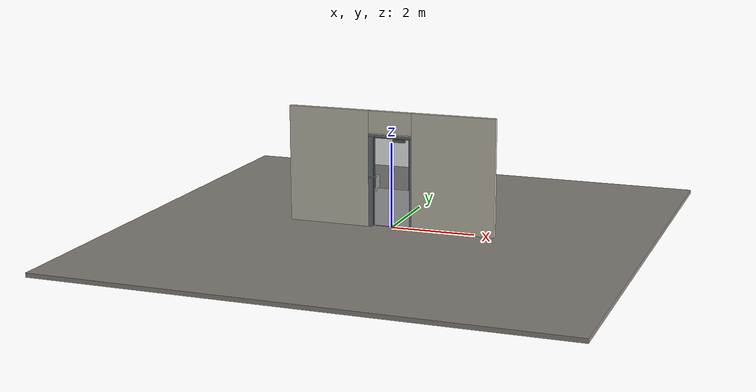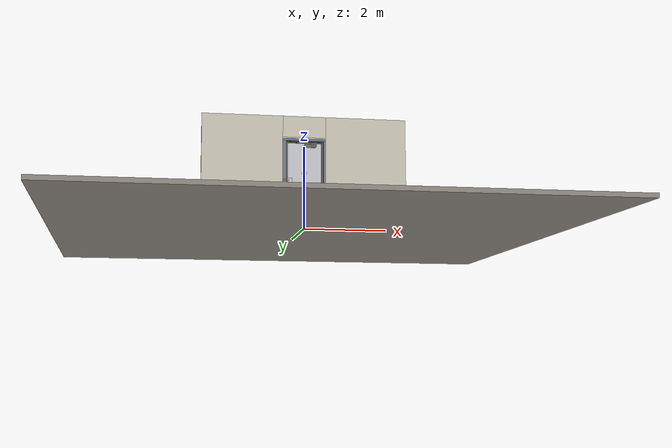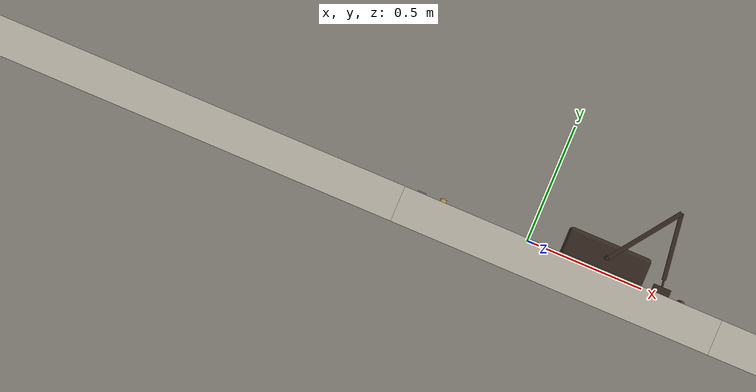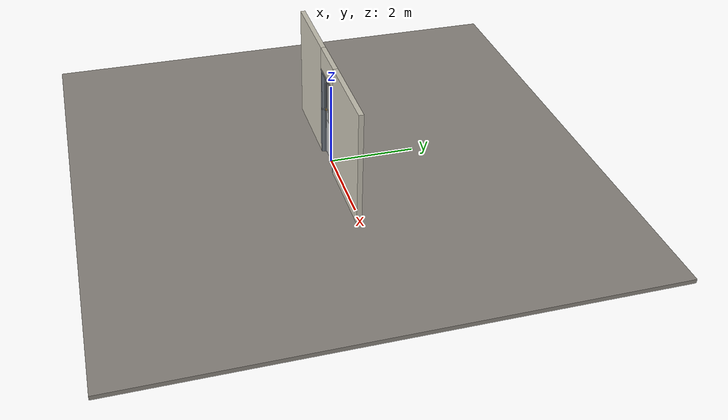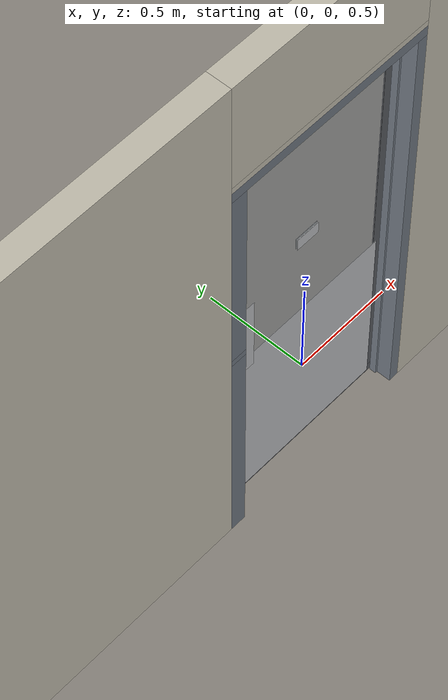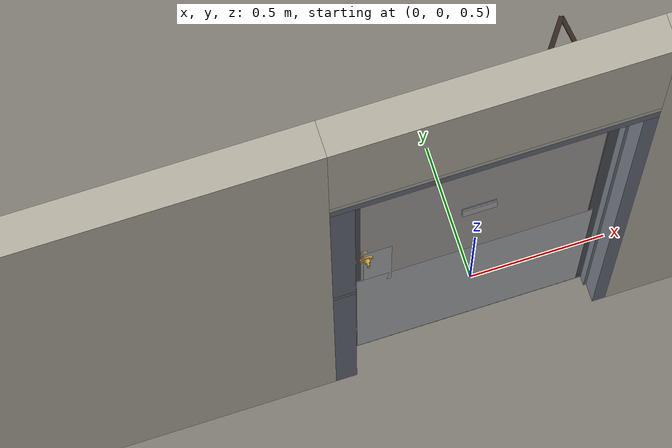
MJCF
<?xml version="1.0" ?>
<mujoco model="db0912_swing_single_full">
  <compiler angle="radian" meshdir="../../hardware" texturedir="../../textures" autolimits="true" inertiafromgeom="false"/>
  <option timestep="0.002" integrator="implicitfast" cone="elliptic" impratio="10" noslip_iterations="3">
    <flag multiccd="enable"/>
  </option>
  <size memory="16M"/>
  <default>
    <geom condim="4" solref="0.005 1" solimp="0.95 0.99 0.001"/>
    <joint solreflimit="0.005 1" solimplimit="0.95 0.99 0.001"/>
    <tendon solreflimit="0.005 1"/>
    <equality solref="0.002 1"/>
  </default>
  <visual>
    <headlight ambient="0.4 0.4 0.4" diffuse="0.7 0.7 0.7" specular="0.2 0.2 0.2"/>
    <quality shadowsize="4096"/>
    <map znear="0.01" zfar="60"/>
  </visual>
  <asset>
    <mesh name="closer_body_fdc4667657" file="closer_body_fdc4667657.obj"/>
    <mesh name="cyl_face_e9e5036966" file="cyl_face_e9e5036966.obj"/>
    <mesh name="hinge_6a70328eaf" file="hinge_6a70328eaf.obj"/>
    <mesh name="hinge_jamb_2905960ffb" file="hinge_jamb_2905960ffb.obj"/>
    <mesh name="thumbturn_eb5c9899a3" file="thumbturn_eb5c9899a3.obj"/>
    <material name="mat_floor" rgba="0.55 0.53 0.5 1" specular="0.2" shininess="0.15" reflectance="0"/>
    <material name="mat_wall" rgba="0.78 0.76 0.7 1" specular="0.2" shininess="0.1" reflectance="0"/>
    <material name="mat_leaf" rgba="0.35 0.36 0.38 1" specular="0.68" shininess="0.4" reflectance="0.32"/>
    <material name="mat_mesh_infill" rgba="0.6 0.62 0.64 0.55" specular="0.68" shininess="0.3" reflectance="0.1"/>
    <material name="mat_hinge" rgba="0.45 0.3 0.22 1" specular="0.5" shininess="0.1" reflectance="0.2"/>
    <material name="mat_op_stainless" rgba="0.75 0.76 0.77 1" specular="0.8" shininess="0.65" reflectance="0.4"/>
    <material name="mat_deadbolt" rgba="0.85 0.66 0.3 1" specular="0.8" shininess="0.75" reflectance="0.4"/>
    <material name="mat_frame" rgba="0.45 0.48 0.52 1" specular="0.32" shininess="0.6" reflectance="0.08"/>
    <material name="mat_seal" rgba="0.1 0.1 0.1 1" specular="0.2" shininess="0.1" reflectance="0"/>
    <material name="mat_closer" rgba="0.22 0.17 0.13 1" specular="0.8" shininess="0.6" reflectance="0.4"/>
    <material name="mat_kick" rgba="0.75 0.76 0.77 1" specular="0.8" shininess="0.65" reflectance="0.4"/>
    <material name="mat_sign" rgba="0.75 0.76 0.77 1" specular="0.8" shininess="0.65" reflectance="0.4"/>
    <texture name="skybox" type="skybox" builtin="gradient" rgb1="0.6 0.7 0.85" rgb2="0.9 0.92 0.95" width="256" height="256"/>
  </asset>
  <worldbody>
    <light name="sun" pos="1.5 -2.5 4" dir="-0.3 0.5 -0.8" directional="true" diffuse="0.8 0.8 0.8" specular="0.3 0.3 0.3" castshadow="true"/>
    <light name="fill" pos="-1.5 2.5 3" dir="0.3 -0.5 -0.7" directional="true" diffuse="0.35 0.35 0.4" castshadow="false"/>
    <camera name="robot_view" pos="0 -2.685312 1.812087" xyaxes="1 0 0 0 0.26963 0.962964" fovy="52"/>
    <camera name="far_view" pos="0 2.590313 1.812087" xyaxes="-1 0 0 0 -0.26963 0.962964" fovy="52"/>
    <camera name="iso" pos="-2.004737 -2.263262 2.234138" xyaxes="0.741536 -0.670913 0 0.242917 0.268487 0.932151" fovy="46"/>
    <camera name="detail_handle" pos="-0.174 -0.8475 1.32" xyaxes="0.97561 0.219512 0 -0.070934 0.315262 0.94635" fovy="38"/>
    <geom name="floor" type="box" size="6 6 0.05" pos="0 0 -0.05" material="mat_floor" group="0" contype="1" conaffinity="1" friction="0.8 0.005 0.0001" density="2400"/>
    <geom name="wall_left" type="box" size="0.98 0.0575 1.3735" pos="-1.52 -0.0475 1.3735" material="mat_wall" group="0" contype="1" conaffinity="1" friction="0.6 0.005 0.0001" density="800"/>
    <geom name="wall_right" type="box" size="0.995 0.0575 1.3735" pos="1.505 -0.0475 1.3735" material="mat_wall" group="0" contype="1" conaffinity="1" friction="0.6 0.005 0.0001" density="800"/>
    <geom name="wall_header" type="box" size="0.525 0.0575 0.26" pos="-0.015 -0.0475 2.487" material="mat_wall" group="0" contype="1" conaffinity="1" friction="0.6 0.005 0.0001" density="800"/>
    <geom name="hinge_0_jamb" type="mesh" mesh="hinge_jamb_2905960ffb" pos="0.457 0.01 0.259" quat="0 0 0 1" material="mat_hinge" group="1" contype="0" conaffinity="0" density="7850"/>
    <geom name="hinge_1_jamb" type="mesh" mesh="hinge_jamb_2905960ffb" pos="0.457 0.01 1.076" quat="0 0 0 1" material="mat_hinge" group="1" contype="0" conaffinity="0" density="7850"/>
    <geom name="hinge_2_jamb" type="mesh" mesh="hinge_jamb_2905960ffb" pos="0.457 0.01 1.963" quat="0 0 0 1" material="mat_hinge" group="1" contype="0" conaffinity="0" density="7850"/>
    <geom name="leaf_deadbolt_strike_b" type="box" size="0.0155 0.003 0.0005" pos="-0.4595 0 1.1615" quat="0.5 0.5 0.5 0.5" material="mat_deadbolt" group="1" contype="0" conaffinity="0" density="7800"/>
    <geom name="leaf_deadbolt_strike_l" type="box" size="0.003 0.0155 0.0005" pos="-0.4595 -0.0125 1.18" quat="0.5 0.5 0.5 0.5" material="mat_deadbolt" group="1" contype="0" conaffinity="0" density="7800"/>
    <geom name="leaf_deadbolt_strike_t" type="box" size="0.0155 0.003 0.0005" pos="-0.4595 0 1.1985" quat="0.5 0.5 0.5 0.5" material="mat_deadbolt" group="1" contype="0" conaffinity="0" density="7800"/>
    <geom name="leaf_deadbolt_strike_r" type="box" size="0.003 0.0155 0.0005" pos="-0.4595 0.0125 1.18" quat="0.5 0.5 0.5 0.5" material="mat_deadbolt" group="1" contype="0" conaffinity="0" density="7800"/>
    <geom name="jamb_hinge" type="box" size="0.025 0.0575 1.0735" pos="0.485 -0.0475 1.0735" material="mat_frame" group="0" contype="1" conaffinity="1" friction="0.6 0.005 0.0001" density="300"/>
    <geom name="strike_1180_wall_n" type="box" size="0.04 0.04775 0.0155" pos="-0.5 -0.05725 1.18" material="mat_frame" group="0" contype="1" conaffinity="1" friction="0.6 0.005 0.0001" density="300"/>
    <geom name="strike_1180_wall_p" type="box" size="0.0157 0.003 0.0155" pos="-0.4757 0.0125 1.18" material="mat_frame" group="0" contype="1" conaffinity="1" friction="0.6 0.005 0.0001" density="300"/>
    <geom name="strike_1180_back" type="box" size="0.0253 0.0095 0.0155" pos="-0.5147 0 1.18" material="mat_frame" group="0" contype="1" conaffinity="1" friction="0.6 0.005 0.0001" density="300"/>
    <geom name="jamb_strike_0" type="box" size="0.04 0.0575 0.58225" pos="-0.5 -0.0475 0.58225" material="mat_frame" group="0" contype="1" conaffinity="1" friction="0.6 0.005 0.0001" density="300"/>
    <geom name="jamb_strike_1" type="box" size="0.04 0.0575 0.47575" pos="-0.5 -0.0475 1.67125" material="mat_frame" group="0" contype="1" conaffinity="1" friction="0.6 0.005 0.0001" density="300"/>
    <geom name="jamb_head" type="box" size="0.525 0.0575 0.025" pos="-0.015 -0.0475 2.172" material="mat_frame" group="0" contype="1" conaffinity="1" friction="0.6 0.005 0.0001" density="300"/>
    <geom name="head_stud" type="box" size="0.525 0.0575 0.015" pos="-0.015 -0.0475 2.212" material="mat_wall" group="0" contype="1" conaffinity="1" friction="0.6 0.005 0.0001" density="500"/>
    <geom name="stop_hinge" type="box" size="0.0055 0.016 1.0735" pos="0.4545 -0.0195 1.0735" material="mat_frame" group="0" contype="1" conaffinity="1" friction="0.6 0.005 0.0001" density="300"/>
    <geom name="stop_strike" type="box" size="0.0055 0.016 0.57625" pos="-0.4545 -0.0195 0.57625" material="mat_frame" group="0" contype="1" conaffinity="1" friction="0.6 0.005 0.0001" density="300"/>
    <geom name="stop_strike_1" type="box" size="0.0055 0.016 0.46975" pos="-0.4545 -0.0195 1.67725" material="mat_frame" group="0" contype="1" conaffinity="1" friction="0.6 0.005 0.0001" density="300"/>
    <geom name="stop_head" type="box" size="0.46 0.016 0.0055" pos="0 -0.0195 2.1415" material="mat_frame" group="0" contype="1" conaffinity="1" friction="0.6 0.005 0.0001" density="300"/>
    <geom name="seal_hinge" type="box" size="0.004 0.003 1.0735" pos="0.457 -0.006 1.0735" material="mat_seal" group="1" contype="0" conaffinity="0" density="1100"/>
    <geom name="seal_strike" type="box" size="0.004 0.003 0.57625" pos="-0.457 -0.006 0.57625" material="mat_seal" group="1" contype="0" conaffinity="0" density="1100"/>
    <geom name="seal_strike_1" type="box" size="0.004 0.003 0.46975" pos="-0.457 -0.006 1.67725" material="mat_seal" group="1" contype="0" conaffinity="0" density="1100"/>
    <geom name="seal_head" type="box" size="0.44 0.003 0.008" pos="0 -0.006 2.135" material="mat_seal" group="1" contype="0" conaffinity="0" density="1100"/>
    <geom name="closer_bracket" type="box" size="0.03 0.012 0.014" pos="0.36 0.022 2.177" material="mat_closer" group="1" contype="0" conaffinity="0" density="2700"/>
    <site name="approach_point" pos="0 -1.5 0" quat="1 0 0 0" size="0.05" rgba="0.2 0.9 0.2 0.5" group="4"/>
    <site name="goal_point" pos="0 1.5 0" quat="1 0 0 0" size="0.05" rgba="0.2 0.9 0.2 0.5" group="4"/>
    <site name="door_plane_center" pos="0 0 1.0735" quat="1 0 0 0" size="0.02" rgba="0.2 0.9 0.2 0.5" group="4"/>
    <body name="leaf" pos="0.46 0 0">
      <inertial pos="-0.430568 0.009404 1.184017" mass="62.750816" quat="0.514038 -0.516417 -0.492153 -0.476302" diaginertia="3.80664727 30.182416688 33.937088856"/>
      <joint name="leaf_hinge" type="hinge" axis="0 0 -1" pos="-0.003 0.01 0" limited="true" range="0 1.745329" solreflimit="0.02 1" damping="12.268966" frictionloss="4.303505" stiffness="15.508058" springref="-1.827437" armature="0.02"/>
      <geom name="leaf_slab_col" type="box" size="0.457 0.003 1.067" pos="-0.46 0 1.076" material="mat_leaf" group="3" contype="1" conaffinity="1" rgba="0.8 0.3 0.3 0.25" friction="0.45 0.005 0.0001" density="1"/>
      <geom name="leaf_rail_b" type="box" size="0.457 0.003 0.0225" pos="-0.46 0 0.0315" material="mat_leaf" group="1" contype="0" conaffinity="0" density="1"/>
      <geom name="leaf_rail_t" type="box" size="0.457 0.003 0.0225" pos="-0.46 0 2.1205" material="mat_leaf" group="1" contype="0" conaffinity="0" density="1"/>
      <geom name="leaf_stile_h" type="box" size="0.0225 0.003 1.067" pos="-0.0255 0 1.076" material="mat_leaf" group="1" contype="0" conaffinity="0" density="1"/>
      <geom name="leaf_stile_l" type="box" size="0.0225 0.003 1.067" pos="-0.8945 0 1.076" material="mat_leaf" group="1" contype="0" conaffinity="0" density="1"/>
      <geom name="leaf_mesh" type="box" size="0.412 0.0015 1.022" pos="-0.46 0 1.076" material="mat_mesh_infill" group="1" contype="0" conaffinity="0" density="1"/>
      <geom name="hinge_0" type="mesh" mesh="hinge_6a70328eaf" pos="-0.003 0.01 0.259" quat="0 0 0 1" material="mat_hinge" group="1" contype="0" conaffinity="0" density="7850"/>
      <geom name="hinge_1" type="mesh" mesh="hinge_6a70328eaf" pos="-0.003 0.01 1.076" quat="0 0 0 1" material="mat_hinge" group="1" contype="0" conaffinity="0" density="7850"/>
      <geom name="hinge_2" type="mesh" mesh="hinge_6a70328eaf" pos="-0.003 0.01 1.963" quat="0 0 0 1" material="mat_hinge" group="1" contype="0" conaffinity="0" density="7850"/>
      <geom name="leaf_push_plate_n" type="box" size="0.05 0.0008 0.2" pos="-0.812 -0.0038 1.04" material="mat_op_stainless" group="1" contype="0" conaffinity="0" density="7900"/>
      <geom name="leaf_deadbolt_faceplate" type="box" size="0.0006 0.001 0.0245" pos="-0.9164 0 1.18" material="mat_deadbolt" group="1" contype="0" conaffinity="0" density="8500"/>
      <geom name="leaf_deadbolt_cylinder_face" type="mesh" mesh="cyl_face_e9e5036966" pos="-0.852 0.003 1.18" quat="0 0 0.707107 0.707107" material="mat_deadbolt" group="1" contype="0" conaffinity="0" density="7100"/>
      <geom name="closer_body" type="mesh" mesh="closer_body_fdc4667657" pos="-0.3 0.003 2.054" quat="0 0 0.707107 0.707107" material="mat_closer" group="1" contype="0" conaffinity="0" density="2000"/>
      <geom name="closer_body_col" type="box" size="0.145 0.05 0.035" pos="-0.3 0.053 2.054" material="mat_closer" group="3" contype="1" conaffinity="1" rgba="0.8 0.3 0.3 0.25" friction="0.6 0.005 0.0001" density="2000"/>
      <geom name="closer_pinion_shaft" type="cylinder" size="0.008 0.0615" pos="-0.3 0.053 2.1155" material="mat_closer" group="1" contype="0" conaffinity="0" density="2700"/>
      <geom name="armor_plate" type="box" size="0.427 0.0008 0.45" pos="-0.46 -0.0038 0.469" material="mat_kick" group="2" contype="0" conaffinity="0" density="7900"/>
      <geom name="sign_push" type="box" size="0.06 0.001 0.03" pos="-0.46 -0.004 1.359" material="mat_sign" group="2" contype="0" conaffinity="0" density="7900"/>
      <geom name="sign_pull" type="box" size="0.06 0.001 0.03" pos="-0.46 0.004 1.359" material="mat_sign" group="2" contype="0" conaffinity="0" density="7900"/>
      <site name="leaf_push_plate_push_n" pos="-0.812 -0.003 1.04" quat="1 0 0 0" size="0.012" rgba="0.2 0.9 0.2 0.5" group="4"/>
      <site name="leaf_edge_mid" pos="-0.917 0 1.067" quat="1 0 0 0" size="0.02" rgba="0.2 0.9 0.2 0.5" group="4"/>
      <body name="leaf_deadbolt" pos="-0.917 0 1.18">
        <inertial pos="0.0023 0 0" mass="0.18836" quat="0 0 0.707107 0.707107" diaginertia="0.000013829 0.000052194 0.000057986"/>
        <joint name="leaf_deadbolt_slide" type="slide" axis="1 0 0" limited="true" range="0 0.0254" damping="5" frictionloss="1.5" armature="0.1"/>
        <geom name="leaf_deadbolt_box" type="box" size="0.0277 0.008 0.0125" pos="0.0023 0 0" material="mat_deadbolt" group="0" contype="1" conaffinity="1" friction="0.3 0.005 0.0001" density="8500"/>
      </body>
      <body name="leaf_deadbolt_thumbturn" pos="-0.852 -0.003 1.18">
        <inertial pos="0 -0.012928 0" mass="0.178946" quat="0.5 0.5 0.5 0.5" diaginertia="0.000026045 0.000026215 0.000032438"/>
        <joint name="leaf_deadbolt_thumbturn_hinge" type="hinge" axis="0 1 0" limited="true" range="0 1.5708" damping="0.05" frictionloss="0.35" armature="0.005"/>
        <geom name="leaf_deadbolt_thumbturn_mesh" type="mesh" mesh="thumbturn_eb5c9899a3" pos="0 0 0" quat="0 0 -0.707107 0.707107" material="mat_deadbolt" group="0" contype="1" conaffinity="1" friction="0.6 0.005 0.0001" density="7100"/>
        <geom name="leaf_deadbolt_thumbturn_col" type="box" size="0.006 0.012 0.016" pos="0 -0.02 0" material="mat_deadbolt" group="3" contype="1" conaffinity="1" rgba="0.8 0.3 0.3 0.25" friction="0.6 0.005 0.0001" density="7100"/>
      </body>
      <body name="closer_arm_main" pos="-0.3 0.053 2.177" quat="0.890947 0 0 0.454107">
        <inertial pos="0.14 0 0" mass="0.12096" quat="1 0 0 0" diaginertia="0.000003588 0.00079128 0.000792852"/>
        <joint name="closer_pinion" type="hinge" axis="0 0 1" limited="false" damping="0.01" armature="0.002"/>
        <geom name="closer_arm_main_geom" type="box" size="0.14 0.008 0.005" pos="0.14 0 0" material="mat_closer" group="1" contype="0" conaffinity="0" density="2700"/>
        <body name="closer_arm_fore" pos="0.28 0 0" quat="0.373215 0 0 -0.927745">
          <inertial pos="0.128088 0 0" mass="0.076531" quat="1 0 0 0" diaginertia="0.000001771 0.000437665 0.000438201"/>
          <joint name="closer_elbow" type="hinge" axis="0 0 1" limited="false" damping="0.01" armature="0.002"/>
          <geom name="closer_arm_fore_geom" type="box" size="0.1125 0.007 0.004" pos="0.1125 0 0" material="mat_closer" group="1" contype="0" conaffinity="0" density="2700"/>
          <geom name="closer_fore_neck" type="box" size="0.0175 0.003 0.003" pos="0.2425 0 0" material="mat_closer" group="1" contype="0" conaffinity="0" density="2700"/>
          <geom name="closer_fore_pivot" type="cylinder" size="0.005 0.012" pos="0.26 0 0" material="mat_closer" group="1" contype="0" conaffinity="0" density="2700"/>
        </body>
      </body>
    </body>
  </worldbody>
  <equality>
    <joint name="leaf_deadbolt_couple" joint1="leaf_deadbolt_slide" joint2="leaf_deadbolt_thumbturn_hinge" polycoef="0 0.01617 0 0 0" active="true"/>
    <connect name="closer_arm_connect" body1="closer_arm_fore" body2="world" anchor="0.26 0 0" active="true"/>
  </equality>
  <contact>
    <exclude body1="leaf_deadbolt" body2="leaf_deadbolt_thumbturn"/>
    <exclude body1="closer_arm_main" body2="leaf"/>
    <exclude body1="closer_arm_fore" body2="leaf"/>
    <exclude body1="closer_arm_main" body2="closer_arm_fore"/>
  </contact>
  <sensor>
    <jointpos name="leaf_hinge_pos" joint="leaf_hinge"/>
    <jointvel name="leaf_hinge_vel" joint="leaf_hinge"/>
    <jointpos name="leaf_deadbolt_slide_pos" joint="leaf_deadbolt_slide"/>
    <jointvel name="leaf_deadbolt_slide_vel" joint="leaf_deadbolt_slide"/>
    <jointpos name="leaf_deadbolt_thumbturn_hinge_pos" joint="leaf_deadbolt_thumbturn_hinge"/>
    <jointvel name="leaf_deadbolt_thumbturn_hinge_vel" joint="leaf_deadbolt_thumbturn_hinge"/>
  </sensor>
</mujoco>
